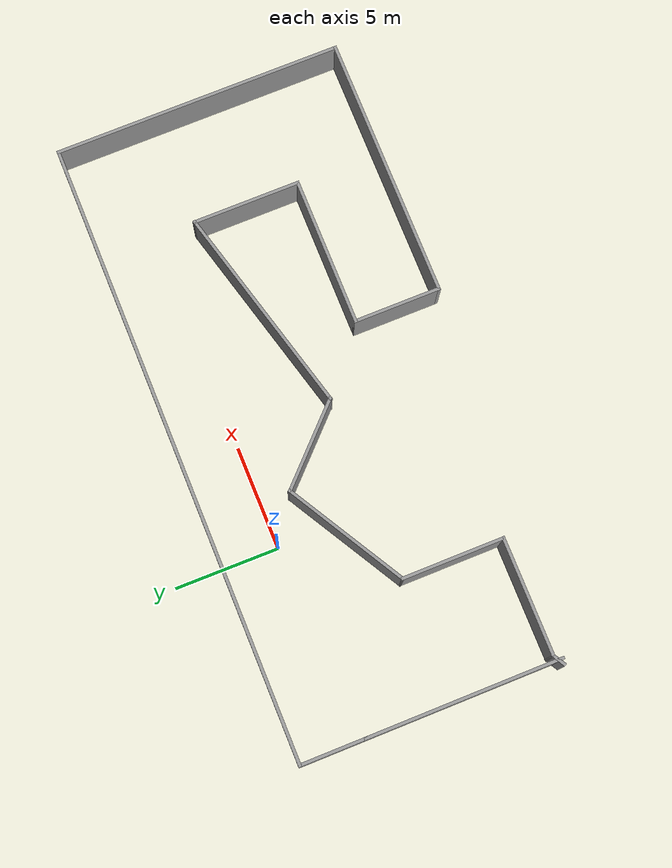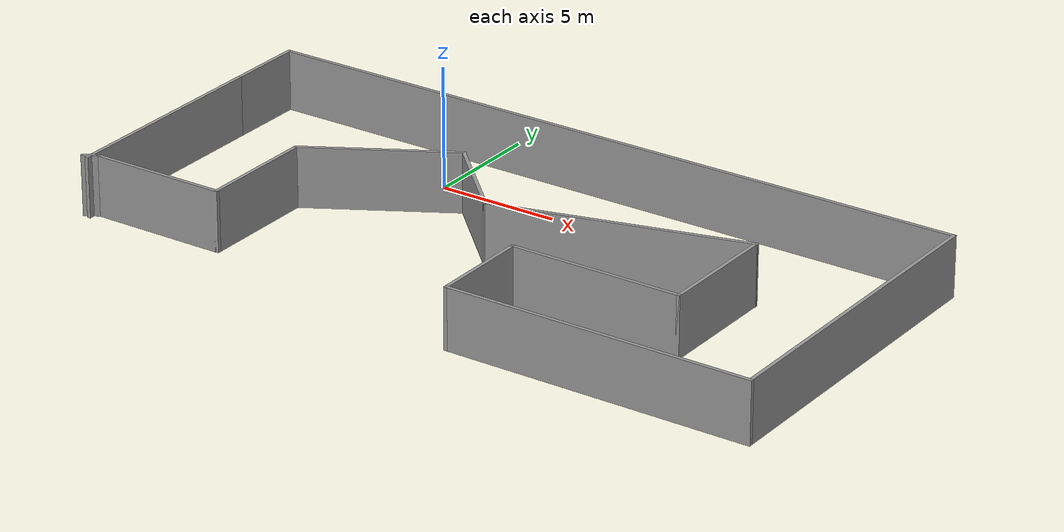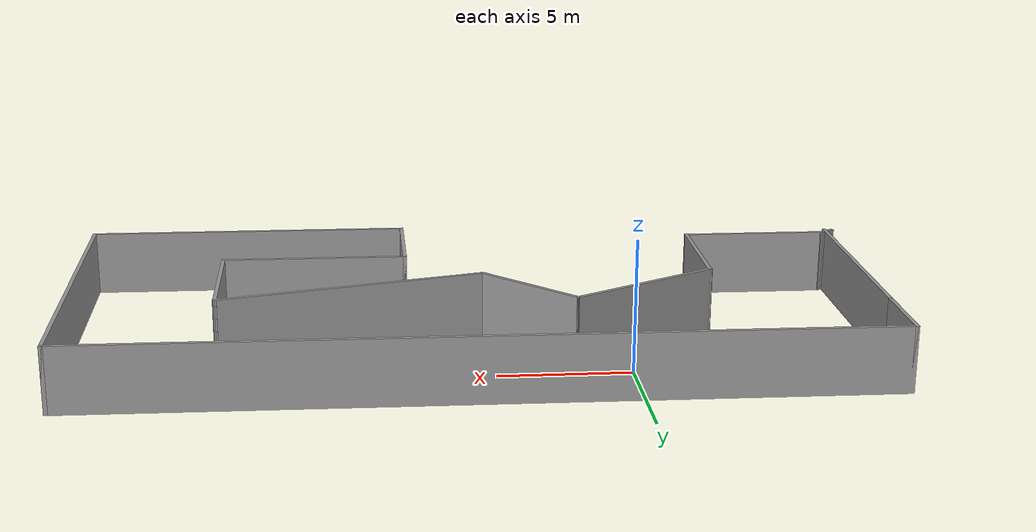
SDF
<?xml version='1.0'?>
<sdf version='1.6'>
  <model name='closed_room'>
    <pose frame=''>5.44915 -4.21955 0 0 -0 0</pose>
    <link name='Wall_1'>
      <collision name='Wall_1_Collision'>
        <geometry>
          <box>
            <size>9.5 0.15 2.5</size>
          </box>
        </geometry>
        <pose frame=''>0 0 1.25 0 -0 0</pose>
      </collision>
      <visual name='Wall_1_Visual'>
        <pose frame=''>0 0 1.25 0 -0 0</pose>
        <geometry>
          <box>
            <size>9.5 0.15 2.5</size>
          </box>
        </geometry>
        <material>
          <script>
            <uri>file://media/materials/scripts/gazebo.material</uri>
            <name>Gazebo/Grey</name>
          </script>
          <ambient>1 1 1 1</ambient>
        </material>
        <meta>
          <layer>0</layer>
        </meta>
      </visual>
      <pose frame=''>-14.9018 -0.85 0 0 -0 1.5708</pose>
    </link>
    <link name='Wall_10'>
      <collision name='Wall_10_Collision'>
        <geometry>
          <box>
            <size>10.5 0.15 2.5</size>
          </box>
        </geometry>
        <pose frame=''>0 0 1.25 0 -0 0</pose>
      </collision>
      <visual name='Wall_10_Visual'>
        <pose frame=''>0 0 1.25 0 -0 0</pose>
        <geometry>
          <box>
            <size>10.5 0.15 2.5</size>
          </box>
        </geometry>
        <material>
          <script>
            <uri>file://media/materials/scripts/gazebo.material</uri>
            <name>Gazebo/Grey</name>
          </script>
          <ambient>1 1 1 1</ambient>
        </material>
        <meta>
          <layer>0</layer>
        </meta>
      </visual>
      <pose frame=''>4.69951 0.935611 0 0 -0 -2.87979</pose>
    </link>
    <link name='Wall_11'>
      <collision name='Wall_11_Collision'>
        <geometry>
          <box>
            <size>4.75 0.15 2.5</size>
          </box>
        </geometry>
        <pose frame=''>0 0 1.25 0 -0 0</pose>
      </collision>
      <visual name='Wall_11_Visual'>
        <pose frame=''>0 0 1.25 0 -0 0</pose>
        <geometry>
          <box>
            <size>4.75 0.15 2.5</size>
          </box>
        </geometry>
        <material>
          <script>
            <uri>file://media/materials/scripts/gazebo.material</uri>
            <name>Gazebo/Grey</name>
          </script>
          <ambient>1 1 1 1</ambient>
        </material>
        <meta>
          <layer>0</layer>
        </meta>
      </visual>
      <pose frame=''>-1.9255 1.22257 0 0 -0 2.35619</pose>
    </link>
    <link name='Wall_12'>
      <collision name='Wall_12_Collision'>
        <geometry>
          <box>
            <size>6.5 0.15 2.5</size>
          </box>
        </geometry>
        <pose frame=''>0 0 1.25 0 -0 0</pose>
      </collision>
      <visual name='Wall_12_Visual'>
        <pose frame=''>0 0 1.25 0 -0 0</pose>
        <geometry>
          <box>
            <size>6.5 0.15 2.5</size>
          </box>
        </geometry>
        <material>
          <script>
            <uri>file://media/materials/scripts/gazebo.material</uri>
            <name>Gazebo/Grey</name>
          </script>
          <ambient>1 1 1 1</ambient>
        </material>
        <meta>
          <layer>0</layer>
        </meta>
      </visual>
      <pose frame=''>-6.30148 1.26141 0 0 -0 -2.61799</pose>
    </link>
    <link name='Wall_13'>
      <collision name='Wall_13_Collision'>
        <geometry>
          <box>
            <size>5 0.15 2.5</size>
          </box>
        </geometry>
        <pose frame=''>0 0 1.25 0 -0 0</pose>
      </collision>
      <visual name='Wall_13_Visual'>
        <pose frame=''>0 0 1.25 0 -0 0</pose>
        <geometry>
          <box>
            <size>5 0.15 2.5</size>
          </box>
        </geometry>
        <material>
          <script>
            <uri>file://media/materials/scripts/gazebo.material</uri>
            <name>Gazebo/Grey</name>
          </script>
          <ambient>1 1 1 1</ambient>
        </material>
        <meta>
          <layer>0</layer>
        </meta>
      </visual>
      <pose frame=''>-9.05111 -2.75109 0 0 -0 -1.5708</pose>
    </link>
    <link name='Wall_14'>
      <collision name='Wall_14_Collision'>
        <geometry>
          <box>
            <size>5.75 0.15 2.5</size>
          </box>
        </geometry>
        <pose frame=''>0 0 1.25 0 -0 0</pose>
      </collision>
      <visual name='Wall_14_Visual'>
        <pose frame=''>0 0 1.25 0 -0 0</pose>
        <geometry>
          <box>
            <size>5.75 0.15 2.5</size>
          </box>
        </geometry>
        <material>
          <script>
            <uri>file://media/materials/scripts/gazebo.material</uri>
            <name>Gazebo/Grey</name>
          </script>
          <ambient>1 1 1 1</ambient>
        </material>
        <meta>
          <layer>0</layer>
        </meta>
      </visual>
      <pose frame=''>-11.8511 -5.17609 0 0 -0 3.14159</pose>
    </link>
    <link name='Wall_15'>
      <collision name='Wall_15_Collision'>
        <geometry>
          <box>
            <size>0.75 0.15 2.5</size>
          </box>
        </geometry>
        <pose frame=''>0 0 1.25 0 -0 0</pose>
      </collision>
      <visual name='Wall_15_Visual'>
        <pose frame=''>0 0 1.25 0 -0 0</pose>
        <geometry>
          <box>
            <size>0.75 0.15 2.5</size>
          </box>
        </geometry>
        <material>
          <script>
            <uri>file://media/materials/scripts/gazebo.material</uri>
            <name>Gazebo/Grey</name>
          </script>
          <ambient>1 1 1 1</ambient>
        </material>
        <meta>
          <layer>0</layer>
        </meta>
      </visual>
      <pose frame=''>-14.9109 -5.32609 0 0 -0 -2.61799</pose>
    </link>
    <link name='Wall_2'>
      <collision name='Wall_2_Collision'>
        <geometry>
          <box>
            <size>3.25 0.15 2.5</size>
          </box>
        </geometry>
        <pose frame=''>0 0 1.25 0 -0 0</pose>
      </collision>
      <visual name='Wall_2_Visual'>
        <pose frame=''>0 0 1.25 0 -0 0</pose>
        <geometry>
          <box>
            <size>3.25 0.15 2.5</size>
          </box>
        </geometry>
        <material>
          <script>
            <uri>file://media/materials/scripts/gazebo.material</uri>
            <name>Gazebo/Grey</name>
          </script>
          <ambient>1 1 1 1</ambient>
        </material>
        <meta>
          <layer>0</layer>
        </meta>
      </visual>
      <pose frame=''>-14.9018 5.375 0 0 -0 1.5708</pose>
    </link>
    <link name='Wall_3'>
      <collision name='Wall_3_Collision'>
        <geometry>
          <box>
            <size>30.25 0.15 2.5</size>
          </box>
        </geometry>
        <pose frame=''>0 0 1.25 0 -0 0</pose>
      </collision>
      <visual name='Wall_3_Visual'>
        <pose frame=''>0 0 1.25 0 -0 0</pose>
        <geometry>
          <box>
            <size>30.25 0.15 2.5</size>
          </box>
        </geometry>
        <material>
          <script>
            <uri>file://media/materials/scripts/gazebo.material</uri>
            <name>Gazebo/Grey</name>
          </script>
          <ambient>1 1 1 1</ambient>
        </material>
        <meta>
          <layer>0</layer>
        </meta>
      </visual>
      <pose frame=''>0.148175 6.925 0 0 -0 0</pose>
    </link>
    <link name='Wall_5'>
      <collision name='Wall_5_Collision'>
        <geometry>
          <box>
            <size>14 0.15 2.5</size>
          </box>
        </geometry>
        <pose frame=''>0 0 1.25 0 -0 0</pose>
      </collision>
      <visual name='Wall_5_Visual'>
        <pose frame=''>0 0 1.25 0 -0 0</pose>
        <geometry>
          <box>
            <size>14 0.15 2.5</size>
          </box>
        </geometry>
        <material>
          <script>
            <uri>file://media/materials/scripts/gazebo.material</uri>
            <name>Gazebo/Grey</name>
          </script>
          <ambient>1 1 1 1</ambient>
        </material>
        <meta>
          <layer>0</layer>
        </meta>
      </visual>
      <pose frame=''>15.1982 0 0 0 -0 -1.5708</pose>
    </link>
    <link name='Wall_6'>
      <collision name='Wall_6_Collision'>
        <geometry>
          <box>
            <size>12.75 0.15 2.5</size>
          </box>
        </geometry>
        <pose frame=''>0 0 1.25 0 -0 0</pose>
      </collision>
      <visual name='Wall_6_Visual'>
        <pose frame=''>0 0 1.25 0 -0 0</pose>
        <geometry>
          <box>
            <size>12.75 0.15 2.5</size>
          </box>
        </geometry>
        <material>
          <script>
            <uri>file://media/materials/scripts/gazebo.material</uri>
            <name>Gazebo/Grey</name>
          </script>
          <ambient>1 1 1 1</ambient>
        </material>
        <meta>
          <layer>0</layer>
        </meta>
      </visual>
      <pose frame=''>8.89818 -6.925 0 0 -0 3.14159</pose>
    </link>
    <link name='Wall_7'>
      <collision name='Wall_7_Collision'>
        <geometry>
          <box>
            <size>4.25 0.15 2.5</size>
          </box>
        </geometry>
        <pose frame=''>0 0 1.25 0 -0 0</pose>
      </collision>
      <visual name='Wall_7_Visual'>
        <pose frame=''>0 0 1.25 0 -0 0</pose>
        <geometry>
          <box>
            <size>4.25 0.15 2.5</size>
          </box>
        </geometry>
        <material>
          <script>
            <uri>file://media/materials/scripts/gazebo.material</uri>
            <name>Gazebo/Grey</name>
          </script>
          <ambient>1 1 1 1</ambient>
        </material>
        <meta>
          <layer>0</layer>
        </meta>
      </visual>
      <pose frame=''>2.59818 -4.875 0 0 -0 1.5708</pose>
    </link>
    <link name='Wall_8'>
      <collision name='Wall_8_Collision'>
        <geometry>
          <box>
            <size>7.25 0.15 2.5</size>
          </box>
        </geometry>
        <pose frame=''>0 0 1.25 0 -0 0</pose>
      </collision>
      <visual name='Wall_8_Visual'>
        <pose frame=''>0 0 1.25 0 -0 0</pose>
        <geometry>
          <box>
            <size>7.25 0.15 2.5</size>
          </box>
        </geometry>
        <material>
          <script>
            <uri>file://media/materials/scripts/gazebo.material</uri>
            <name>Gazebo/Grey</name>
          </script>
          <ambient>1 1 1 1</ambient>
        </material>
        <meta>
          <layer>0</layer>
        </meta>
      </visual>
      <pose frame=''>6.14818 -2.825 0 0 -0 0</pose>
    </link>
    <link name='Wall_9'>
      <collision name='Wall_9_Collision'>
        <geometry>
          <box>
            <size>5.25 0.15 2.5</size>
          </box>
        </geometry>
        <pose frame=''>0 0 1.25 0 -0 0</pose>
      </collision>
      <visual name='Wall_9_Visual'>
        <pose frame=''>0 0 1.25 0 -0 0</pose>
        <geometry>
          <box>
            <size>5.25 0.15 2.5</size>
          </box>
        </geometry>
        <material>
          <script>
            <uri>file://media/materials/scripts/gazebo.material</uri>
            <name>Gazebo/Grey</name>
          </script>
          <ambient>1 1 1 1</ambient>
        </material>
        <meta>
          <layer>0</layer>
        </meta>
      </visual>
      <pose frame=''>9.69818 -0.275 0 0 -0 1.5708</pose>
    </link>
    <static>1</static>
  </model>
</sdf>
